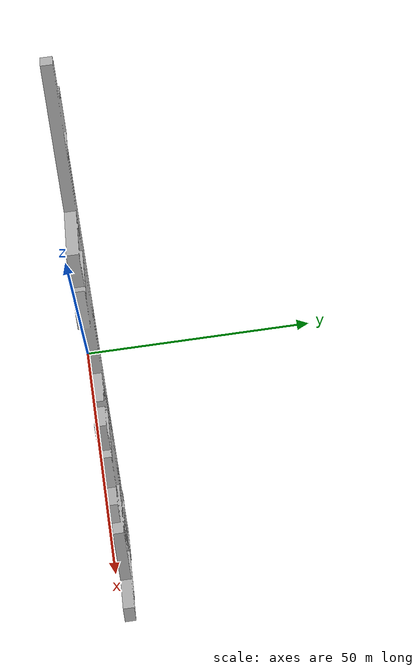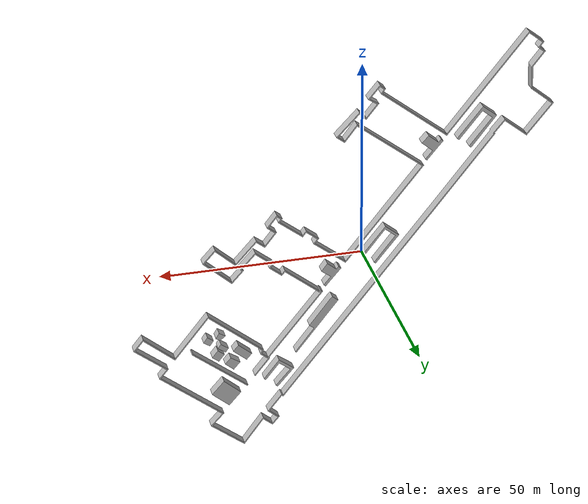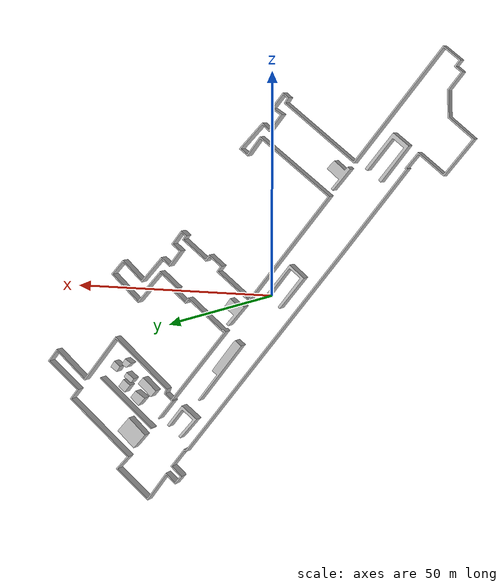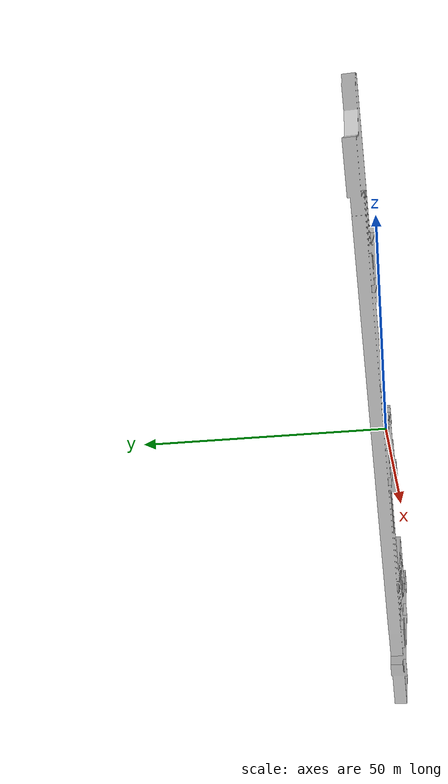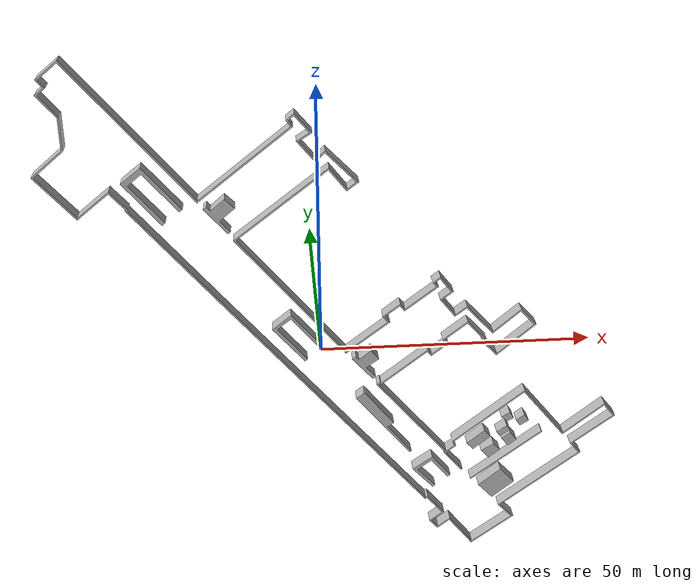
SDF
<?xml version="1.0" ?>
<sdf version="1.6">
  <model name="facultad_ull">
    <static>true</static>
    <link name="link">
      <collision name="collision">
        <geometry>
          <mesh>
            <uri>model://facultad_ull/meshes/modelo_facultad.stl</uri>
            <scale>1 1 1</scale>
          </mesh>
        </geometry>
      </collision>
      <visual name="visual">
        <geometry>
          <mesh>
            <uri>model://facultad_ull/meshes/modelo_facultad.stl</uri>
            <scale>1 1 1</scale>
          </mesh>
        </geometry>
      </visual>
    </link>
  </model>
</sdf>
